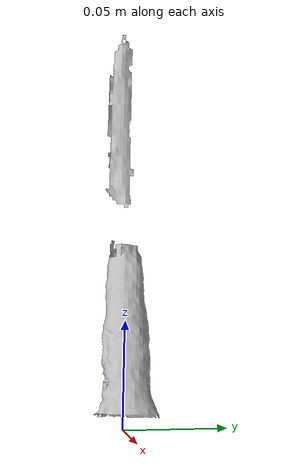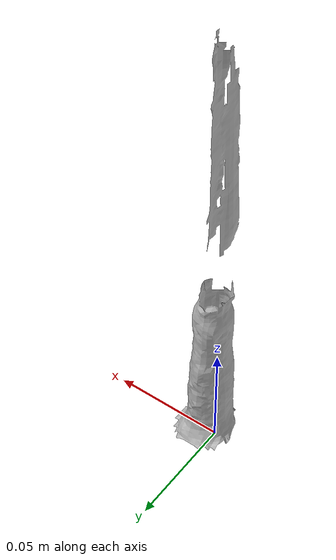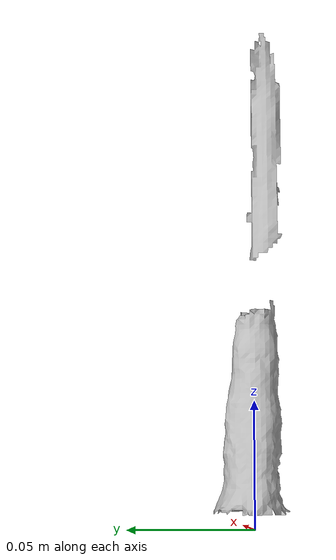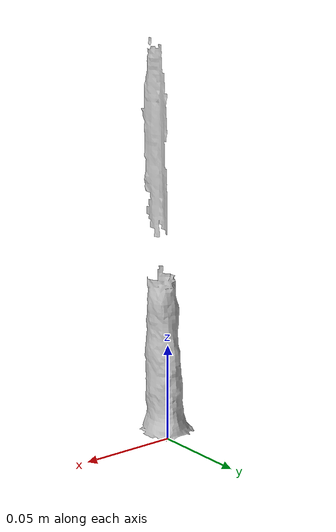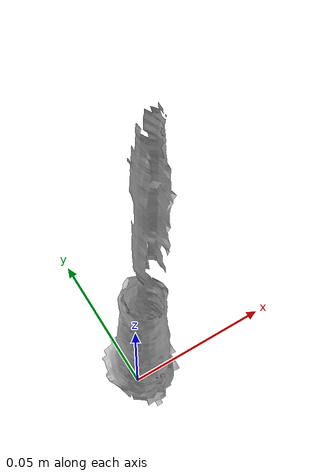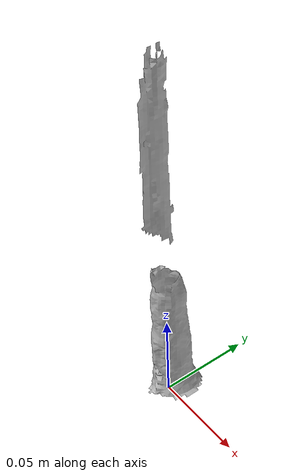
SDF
<?xml version="1.0" ?>
<sdf version="1.4">
  <model name="032_knife">
    <pose>0 0 0  0 0 0</pose>
    <link name="body">
      <inertial>
        <!-- Volume:  2.1222937000e-05 -->
        <mass> 1.0 </mass>
        <!-- Center of mass:  1.8664700000e-03 -7.6711000000e-04  4.0592080000e-02 -->
        <pose>  1.8664700000e-03 -7.6711000000e-04  4.0592080000e-02 0 0 0 </pose>
        <!-- Inertia matrix -->
        <inertia>
          <ixx>  5.1228831335e-04 </ixx>
          <ixy> -3.0134848914e-07 </ixy>
          <ixz> -6.8970001654e-06 </ixz>
          <iyy>  5.0352956332e-04 </iyy>
          <iyz>  1.9716121289e-05 </iyz>
          <izz>  4.5338734219e-05 </izz>
        </inertia>
      </inertial>
      <visual name="visual">
        <geometry>
          <mesh>
            <uri>model://032_knife/nontextured.stl</uri>
          </mesh>
        </geometry>
      </visual>
      <collision name="collision">
        <geometry>
          <mesh>
            <uri>model://032_knife/nontextured.stl</uri>
          </mesh>
        </geometry>
        <max_contacts>10</max_contacts>
        <surface>
          <friction>
            <ode>
              <mu>0.8</mu>
              <mu2>0.8</mu2>
              <slip1>0</slip1>
              <slip2>0</slip2>
            </ode>
            <torsional>
              <ode/>
            </torsional>
          </friction>
          <contact>
            <ode>
              <kp>1000000.0</kp>
              <kd>1.0</kd>
              <max_vel>0.0</max_vel>
            </ode>
          </contact>
        </surface>
      </collision>
    </link>
  </model>
</sdf>
